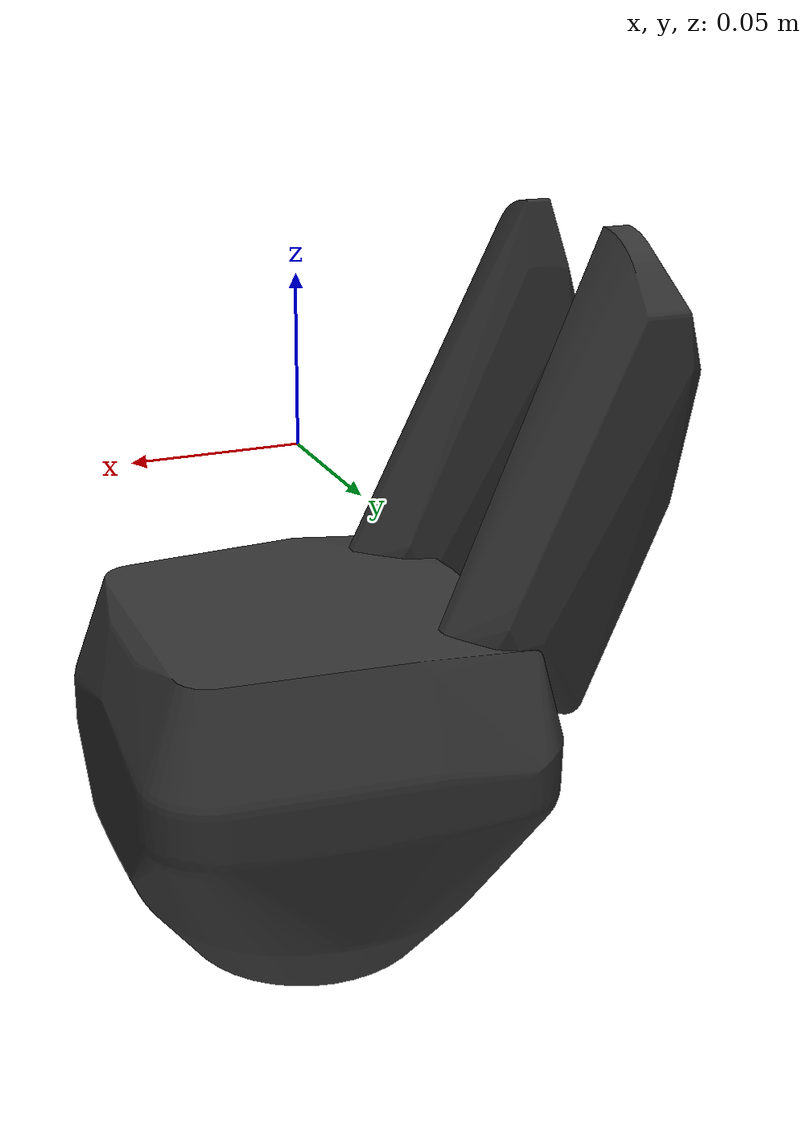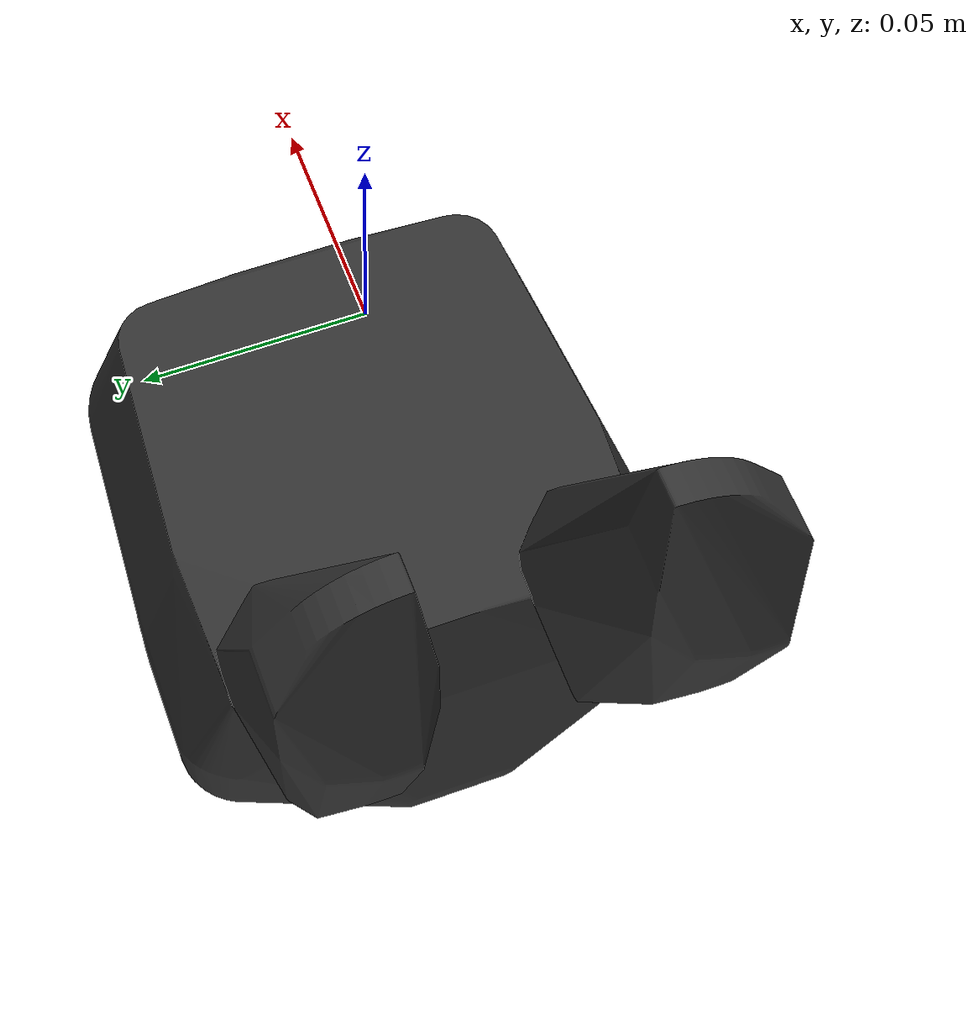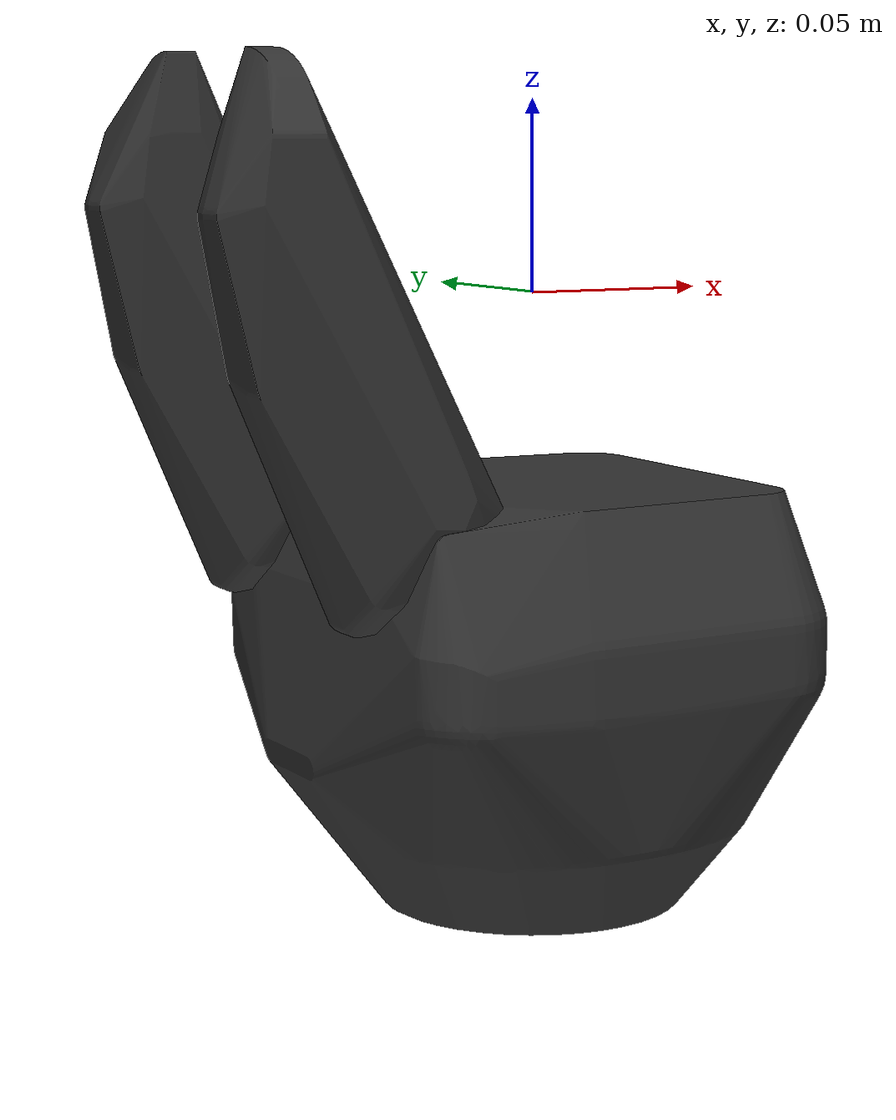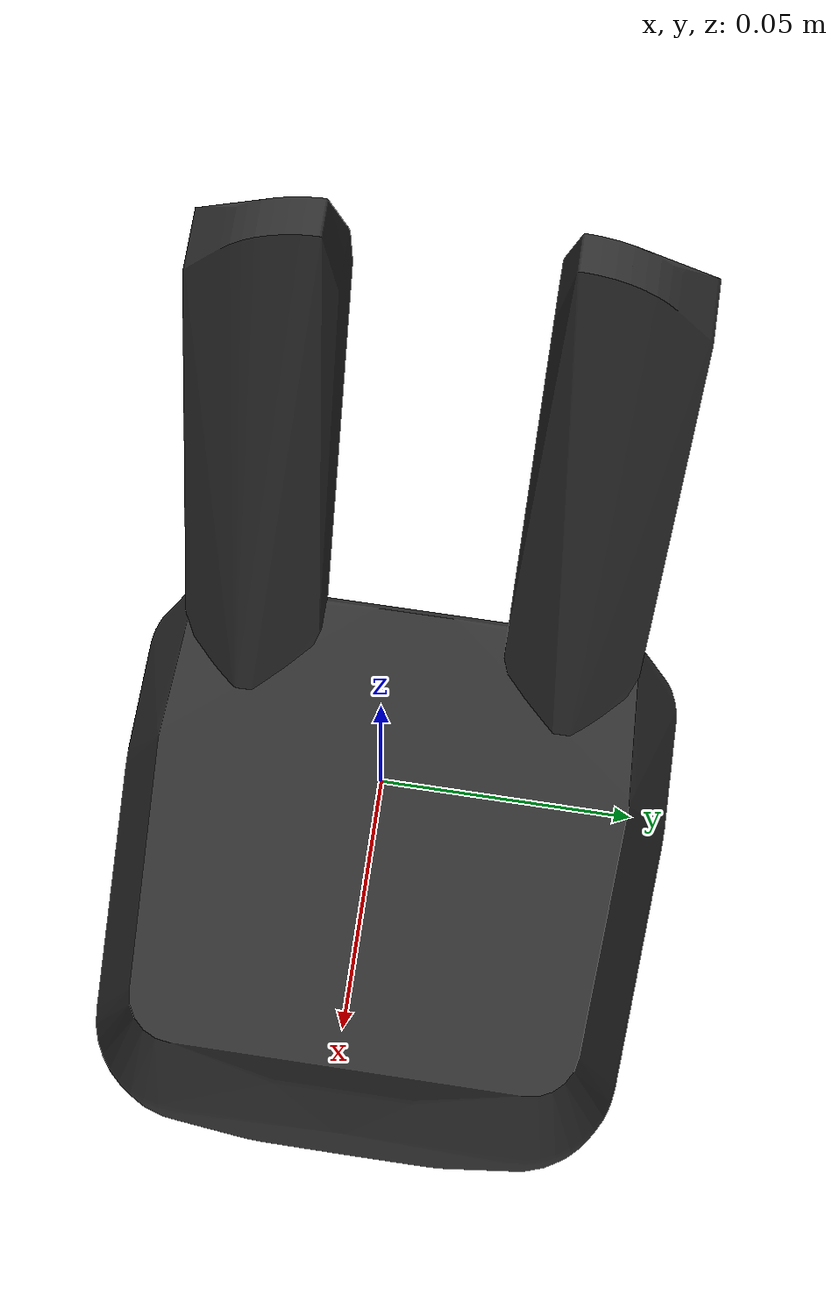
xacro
<?xml version="1.0" ?>

<!-- NOTE: THE URDF GENERATED BY THIS FILE DOES NO WORK PROPERLY BECAUSE -->
<!-- IT INCLUDES ONLY FIXED JOINTS (WHICH ARE NOT PUBLISHED BY THE JOINT -->
<!-- STATE PUBLISHER.                                                    -->
<robot name="s-model_mesh" xmlns:xacro="http://ros.org/wiki/xacro">
	<xacro:include filename="$(find robotiq_description)/urdf/s-model_mesh_macro.xacro" />
	<xacro:s-model_mesh prefix=""/>
</robot>

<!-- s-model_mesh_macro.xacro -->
<robot xmlns:xacro="http://ros.org/wiki/xacro">
	<xacro:macro name="s-model_mesh" params="prefix">
		<!-- link list -->
		<link name="${prefix}palm">
			<visual>
				<geometry>
					<mesh filename="package://robotiq_description/meshes/s-model/visual/GRIPPER_OPEN_PALM.stl" />
				</geometry>
				<material name="black">
					<color rgba=".2 .2 .2 1"/>
				</material>
			</visual>
			<collision>
				<geometry>
					<mesh filename="package://robotiq_description/meshes/s-model/collision/GRIPPER_OPEN_PALM.stl" />
				</geometry>
				<material name="yellow">
					<color rgba="0 1 1 1"/>
				</material>
			</collision>
		</link>
    <link name="${prefix}finger_1">
			<visual>
				<geometry>
					<mesh filename="package://robotiq_description/meshes/s-model/visual/GRIPPER_OPEN_FINGER_1.stl" />
				</geometry>
				<material name="black"/>
			</visual>
			<collision>
				<geometry>
					<mesh filename="package://robotiq_description/meshes/s-model/collision/GRIPPER_OPEN_FINGER_1.stl" />
				</geometry>
				<material name="yellow"/>
			</collision>
		</link>
    <link name="${prefix}finger_2">
			<visual>
				<geometry>
					<mesh filename="package://robotiq_description/meshes/s-model/visual/GRIPPER_OPEN_FINGER_2.stl" />
				</geometry>
				<material name="black"/>
			</visual>
			<collision>
				<geometry>
					<mesh filename="package://robotiq_description/meshes/s-model/collision/GRIPPER_OPEN_FINGER_2.stl" />
				</geometry>
				<material name="yellow"/>
			</collision>
		</link>
    <link name="${prefix}finger_3">
			<visual>
				<geometry>
					<mesh filename="package://robotiq_description/meshes/s-model/visual/GRIPPER_OPEN_FINGER_3.stl" />
				</geometry>
				<material name="black"/>
			</visual>
			<collision>
				<geometry>
					<mesh filename="package://robotiq_description/meshes/s-model/collision/GRIPPER_OPEN_FINGER_3.stl" />
				</geometry>
				<material name="yellow"/>
			</collision>
		</link>
		<!-- end of link list -->
		<!-- joint list -->
		<joint name="${prefix}joint_1" type="fixed">
			<parent link="${prefix}palm"/>
			<child link="${prefix}finger_1"/>
			<origin xyz="0 0 0" rpy="0 0 0"/>
		</joint>
		<joint name="${prefix}joint_2" type="fixed">
			<parent link="${prefix}palm"/>
			<child link="${prefix}finger_2"/>
			<origin xyz="0 0 0" rpy="0 0 0"/>
		</joint>
		<joint name="${prefix}joint_3" type="fixed">
			<parent link="${prefix}palm"/>
			<child link="${prefix}finger_3"/>
			<origin xyz="0 0 0" rpy="0 0 0"/>
		</joint>
		<!-- end of joint list -->
	</xacro:macro>
</robot>
